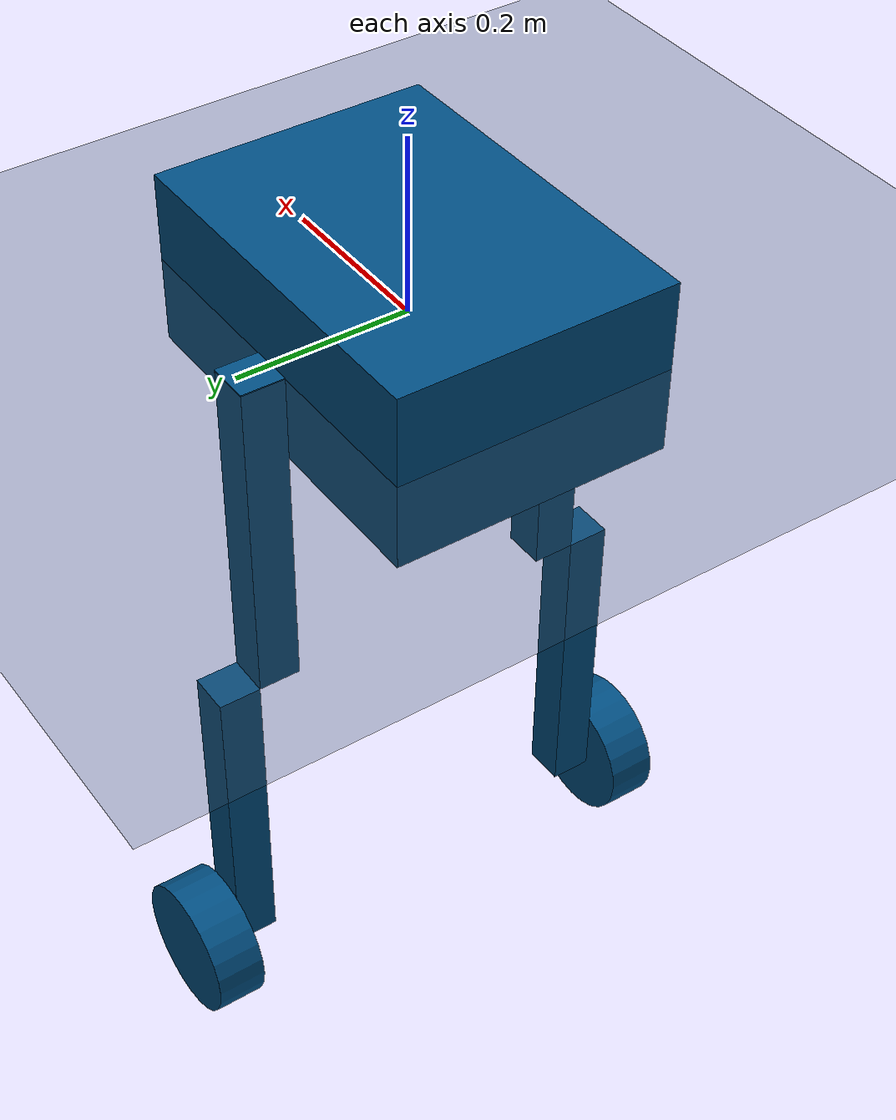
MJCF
<mujoco model="scenario">
  <include file="robot.xml"/>
  <option timestep="0.001" integrator="implicitfast"/>
  <visual>
    <global azimuth="150" elevation="-20"/>
    <headlight ambient="0.29999999999999999 0.29999999999999999 0.29999999999999999" diffuse="0.59999999999999998 0.59999999999999998 0.59999999999999998" specular="0 0 0"/>
    <rgba haze="0.14999999999999999 0.25 0.34999999999999998 1"/>
  </visual>
  <default>
    <default class="scene/"/>
  </default>
  <asset>
    <texture name="skybox" builtin="gradient" rgb1="0.29999999999999999 0.5 0.69999999999999996" rgb2="0 0 0" width="512" height="3072"/>
    <texture name="grouplane" type="2d" builtin="checker" rgb1="0.20000000000000001 0.29999999999999999 0.40000000000000002" rgb2="0.10000000000000001 0.20000000000000001 0.29999999999999999" mark="edge" markrgb="0.80000000000000004 0.80000000000000004 0.80000000000000004" width="300" height="300"/>
    <material name="groundplane_mat" class="scene/" texture="grouplane" texrepeat="5 5" texuniform="true" reflectance="0.20000000000000001"/>
  </asset>
  <worldbody>
    <light name="global_light" class="scene/" directional="false" pos="0 0 3" dir="0 0 -1"/>
    <geom name="floor" class="scene/" type="plane" conaffinity="15" condim="3" size="0 0 0.125" material="groundplane_mat"/>
  </worldbody>
</mujoco>

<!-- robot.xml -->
<mujoco model="robot">
  <option apirate="2000"/>
  <default>
    <default class="robot/"/>
    </default>
  <worldbody>
    <body name="body_chassis_" pos="0 0 0" euler="0 0 0">
      <camera name="camera_track_chassis_" class="robot/" mode="track" pos="0 -3 1" zaxis="0 -1 0.5"/>
      <geom name="geom_chassis_" class="robot/" type="box" size="0.22 0.16 0.10000000000000001" rgba="0 0.29999999999999999 0.5 1" mass="15"/>
      <site name="right_site_chassis_" class="robot/" size="9.9999999999999995e-07 9.9999999999999995e-07 9.9999999999999995e-07" pos="0 -0.16 0"/>
      <body pos="0 -0.16 0" name="right_upper_link/">
        <body name="right_upper_link/body_link_right_upper">
          <geom name="right_upper_link/geom_link_right_upper" class="robot/" type="box" size="0.025000000000000001 0.025000000000000001 0.20000000000000001" rgba="0 0.29999999999999999 0.5 1" mass="2" pos="0 -0.025000000000000001 -0.20000000000000001"/>
          <joint name="right_upper_link/joint_link_right_upper" class="robot/" type="hinge" axis="0 1 0" armature="0.010901249999999999" damping="0.023900000000000001" frictionloss="0.13339999999999999"/>
          <site name="right_upper_link/link_out_site_right_upper" class="robot/" size="9.9999999999999995e-07 9.9999999999999995e-07 9.9999999999999995e-07" pos="0 -0.050000000000000003 -0.40000000000000002"/>
          <body pos="0 -0.050000000000000003 -0.40000000000000002" name="right_upper_link/right_down_link/">
            <body name="right_upper_link/right_down_link/body_link_right_down">
              <geom name="right_upper_link/right_down_link/geom_link_right_down" class="robot/" type="box" size="0.025000000000000001 0.025000000000000001 0.20000000000000001" rgba="0 0.29999999999999999 0.5 1" mass="2" pos="0 -0.025000000000000001 -0.20000000000000001"/>
              <joint name="right_upper_link/right_down_link/joint_link_right_down" class="robot/" type="hinge" axis="0 1 0" armature="0.010901249999999999" damping="0.023900000000000001" frictionloss="0.13339999999999999"/>
              <site name="right_upper_link/right_down_link/link_out_site_right_down" class="robot/" size="9.9999999999999995e-07 9.9999999999999995e-07 9.9999999999999995e-07" pos="0 -0.050000000000000003 -0.40000000000000002"/>
              <body pos="0 -0.050000000000000003 -0.40000000000000002" name="right_upper_link/right_down_link/right_tire/">
                <body name="right_upper_link/right_down_link/right_tire/body_tire_right">
                  <geom name="right_upper_link/right_down_link/right_tire/geom_tire_right" class="robot/" type="cylinder" condim="6" priority="1" size="0.082500000000000004 0.029999999999999999" rgba="0 0.29999999999999999 0.5 1" friction="0.94999999999999996 0.0050000000000000001 0.0001" mass="1" pos="0 -0.029999999999999999 0" euler="90 0 0"/>
                  <joint name="right_upper_link/right_down_link/right_tire/joint_tire_right" class="robot/" type="hinge" axis="0 1 0" damping="0.023900000000000001"/>
                </body>
              </body>
            </body>
          </body>
        </body>
      </body>
      <site name="left_site_chassis_" class="robot/" size="9.9999999999999995e-07 9.9999999999999995e-07 9.9999999999999995e-07" pos="0 0.16 0" euler="0 0 180"/>
      <body pos="0 0.16 0" euler="0 0 180" name="left_upper_link/">
        <body name="left_upper_link/body_link_left_upper">
          <geom name="left_upper_link/geom_link_left_upper" class="robot/" type="box" size="0.025000000000000001 0.025000000000000001 0.20000000000000001" rgba="0 0.29999999999999999 0.5 1" mass="2" pos="0 -0.025000000000000001 -0.20000000000000001"/>
          <joint name="left_upper_link/joint_link_left_upper" class="robot/" type="hinge" axis="0 1 0" damping="0.023900000000000001"/>
          <site name="left_upper_link/link_out_site_left_upper" class="robot/" size="9.9999999999999995e-07 9.9999999999999995e-07 9.9999999999999995e-07" pos="0 -0.050000000000000003 -0.40000000000000002"/>
          <body pos="0 -0.050000000000000003 -0.40000000000000002" name="left_upper_link/left_down_link/">
            <body name="left_upper_link/left_down_link/body_link_left_down">
              <geom name="left_upper_link/left_down_link/geom_link_left_down" class="robot/" type="box" size="0.025000000000000001 0.025000000000000001 0.20000000000000001" rgba="0 0.29999999999999999 0.5 1" mass="2" pos="0 -0.025000000000000001 -0.20000000000000001"/>
              <joint name="left_upper_link/left_down_link/joint_link_left_down" class="robot/" type="hinge" axis="0 1 0" damping="0.023900000000000001"/>
              <site name="left_upper_link/left_down_link/link_out_site_left_down" class="robot/" size="9.9999999999999995e-07 9.9999999999999995e-07 9.9999999999999995e-07" pos="0 -0.050000000000000003 -0.40000000000000002"/>
              <body pos="0 -0.050000000000000003 -0.40000000000000002" name="left_upper_link/left_down_link/left_tire/">
                <body name="left_upper_link/left_down_link/left_tire/body_tire_left">
                  <geom name="left_upper_link/left_down_link/left_tire/geom_tire_left" class="robot/" type="cylinder" condim="6" priority="1" size="0.082500000000000004 0.029999999999999999" rgba="0 0.29999999999999999 0.5 1" friction="0.94999999999999996 0.0050000000000000001 0.0001" mass="1" pos="0 -0.029999999999999999 0" euler="90 0 0"/>
                  <joint name="left_upper_link/left_down_link/left_tire/joint_tire_left" class="robot/" type="hinge" axis="0 1 0" damping="0.023900000000000001"/>
                </body>
              </body>
            </body>
          </body>
        </body>
      </body>
      <freejoint name="free_floating_chassis_"/>
      <site name="imu" class="robot/" size="9.9999999999999995e-07 9.9999999999999995e-07 9.9999999999999995e-07" pos="0 0 0"/>
    </body>
    <light name="spotlight_0" class="robot/" mode="targetbodycom" target="body_chassis_" pos="0.25 0.19 0.15000000000000002"/>
    <light name="spotlight_1" class="robot/" mode="targetbodycom" target="body_chassis_" pos="0.25 -0.19 0.15000000000000002"/>
    <light name="spotlight_2" class="robot/" mode="targetbodycom" target="body_chassis_" pos="-0.25 0.19 0.15000000000000002"/>
    <light name="spotlight_3" class="robot/" mode="targetbodycom" target="body_chassis_" pos="-0.25 -0.19 0.15000000000000002"/>
  </worldbody>
  <actuator>
    <position kp="200" kv="20" name="right_upper_link/act" class="robot/" ctrllimited="true" forcelimited="true" ctrlrange="-50 50" forcerange="-50 50" joint="right_upper_link/joint_link_right_upper"/>
    <position kp="200" kv="20" name="right_upper_link/right_down_link/act" class="robot/" ctrllimited="true" forcelimited="true" ctrlrange="-50 50" forcerange="-50 50" joint="right_upper_link/right_down_link/joint_link_right_down"/>
    <velocity kv="100" gear="0.04" name="right_upper_link/right_down_link/right_tire/act" class="robot/" ctrllimited="true" ctrlrange="-50 50" joint="right_upper_link/right_down_link/right_tire/joint_tire_right"/>
    <position kp="200" kv="20" name="left_upper_link/act" class="robot/" ctrllimited="true" forcelimited="true" ctrlrange="-50 50" forcerange="-50 50" joint="left_upper_link/joint_link_left_upper"/>
    <position kp="200" kv="20" name="left_upper_link/left_down_link/act" class="robot/" ctrllimited="true" forcelimited="true" ctrlrange="-50 50" forcerange="-50 50" joint="left_upper_link/left_down_link/joint_link_left_down"/>
    <velocity kv="100" gear="0.04" name="left_upper_link/left_down_link/left_tire/act" class="robot/" ctrllimited="true" ctrlrange="-50 50" joint="left_upper_link/left_down_link/left_tire/joint_tire_left"/>
  </actuator>
  <sensor>
    <gyro name="_gyro" site="imu"/>
    <accelerometer name="_accelerometer" site="imu"/>
    <magnetometer name="_magnetometer" site="imu"/>
    <framequat name="_orientation" objtype="site" objname="imu"/>
    <jointpos name="right_upper_link/pos" joint="right_upper_link/joint_link_right_upper"/>
    <jointvel name="right_upper_link/vel" joint="right_upper_link/joint_link_right_upper"/>
    <jointpos name="right_upper_link/right_down_link/pos" joint="right_upper_link/right_down_link/joint_link_right_down"/>
    <jointvel name="right_upper_link/right_down_link/vel" joint="right_upper_link/right_down_link/joint_link_right_down"/>
    <jointpos name="right_upper_link/right_down_link/right_tire/pos" joint="right_upper_link/right_down_link/right_tire/joint_tire_right"/>
    <jointvel name="right_upper_link/right_down_link/right_tire/vel" joint="right_upper_link/right_down_link/right_tire/joint_tire_right"/>
    <jointpos name="left_upper_link/pos" joint="left_upper_link/joint_link_left_upper"/>
    <jointvel name="left_upper_link/vel" joint="left_upper_link/joint_link_left_upper"/>
    <jointpos name="left_upper_link/left_down_link/pos" joint="left_upper_link/left_down_link/joint_link_left_down"/>
    <jointvel name="left_upper_link/left_down_link/vel" joint="left_upper_link/left_down_link/joint_link_left_down"/>
    <jointpos name="left_upper_link/left_down_link/left_tire/pos" joint="left_upper_link/left_down_link/left_tire/joint_tire_left"/>
    <jointvel name="left_upper_link/left_down_link/left_tire/vel" joint="left_upper_link/left_down_link/left_tire/joint_tire_left"/>
  </sensor>
<keyframe><key time="0" name="init" qpos="0.0 0.0 0.6481854249492381 1.0 0.0 0.0 0.0 0.7853981633974483 -1.5707963267948966 0.0 -0.7853981633974483 1.5707963267948966 0.0"/></keyframe></mujoco>
